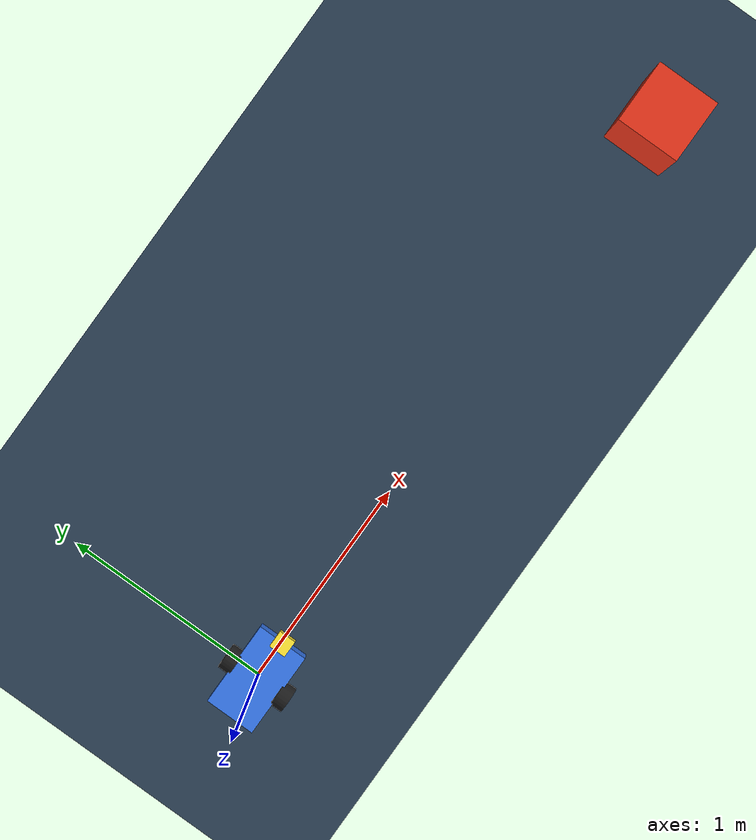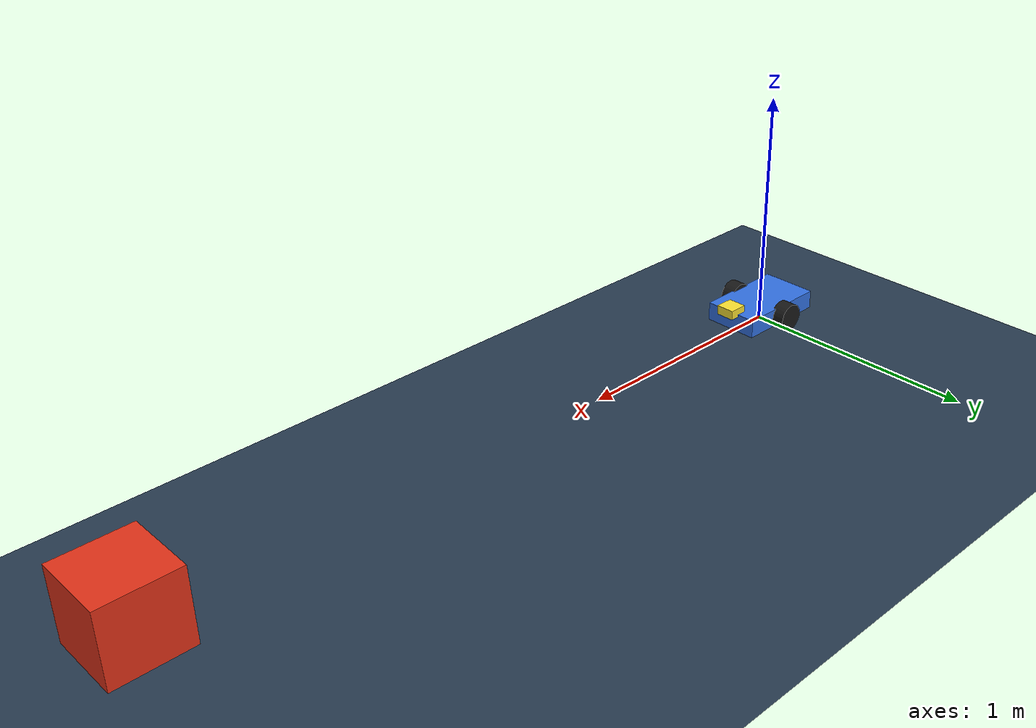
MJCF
<mujoco model="diffdrive_car">
  <option timestep="0.005" integrator="implicitfast"/>
  <visual>
    <global offwidth="1280" offheight="720"/>
    <headlight diffuse="0.7 0.7 0.7" ambient="0.3 0.3 0.3"/>
  </visual>

  <asset>
    <texture name="grid" type="2d" builtin="checker" rgb1="0.2 0.3 0.4" rgb2="0.12 0.17 0.23"
             width="512" height="512"/>
    <material name="grid" texture="grid" texrepeat="10 10" reflectance="0.1"/>
  </asset>

  <worldbody>
    <light pos="0 0 4" dir="0 0 -1" diffuse="0.8 0.8 0.8"/>
    <geom name="floor" type="plane" size="15 15 0.1" material="grid"/>

    <!-- Target cube (its position is randomized each episode by the env) -->
    <body name="target" pos="3 0 0.15" mocap="true">
      <geom name="target" type="box" size="0.15 0.15 0.15" rgba="0.9 0.2 0.1 1" contype="0" conaffinity="0"/>
    </body>

    <!-- The car -->
    <body name="chassis" pos="0 0 0.06">
      <freejoint name="root"/>
      <geom name="chassis" type="box" size="0.20 0.12 0.04" rgba="0.2 0.45 0.9 1" mass="2.0"/>
      <!-- a small nose marker so orientation is visible -->
      <geom name="nose" type="box" size="0.04 0.04 0.02" pos="0.20 0 0.05" rgba="1 0.9 0.2 1" mass="0.01"/>

      <body name="left_wheel" pos="0 0.14 0">
        <joint name="left" type="hinge" axis="0 1 0"/>
        <geom type="cylinder" size="0.06 0.03" euler="90 0 0" rgba="0.1 0.1 0.1 1" mass="0.3"
              friction="1.5 0.01 0.001"/>
      </body>
      <body name="right_wheel" pos="0 -0.14 0">
        <joint name="right" type="hinge" axis="0 1 0"/>
        <geom type="cylinder" size="0.06 0.03" euler="90 0 0" rgba="0.1 0.1 0.1 1" mass="0.3"
              friction="1.5 0.01 0.001"/>
      </body>

      <!-- front caster: low-friction sphere so the car pivots cleanly -->
      <geom name="caster" type="sphere" size="0.03" pos="0.16 0 -0.03" rgba="0.5 0.5 0.5 1"
            friction="0.001 0.001 0.0001" mass="0.05"/>
    </body>
  </worldbody>

  <actuator>
    <!-- velocity-controlled wheels: action = target wheel angular velocity (rad/s) -->
    <velocity name="left_motor"  joint="left"  kv="0.8" ctrlrange="-25 25"/>
    <velocity name="right_motor" joint="right" kv="0.8" ctrlrange="-25 25"/>
  </actuator>
</mujoco>
